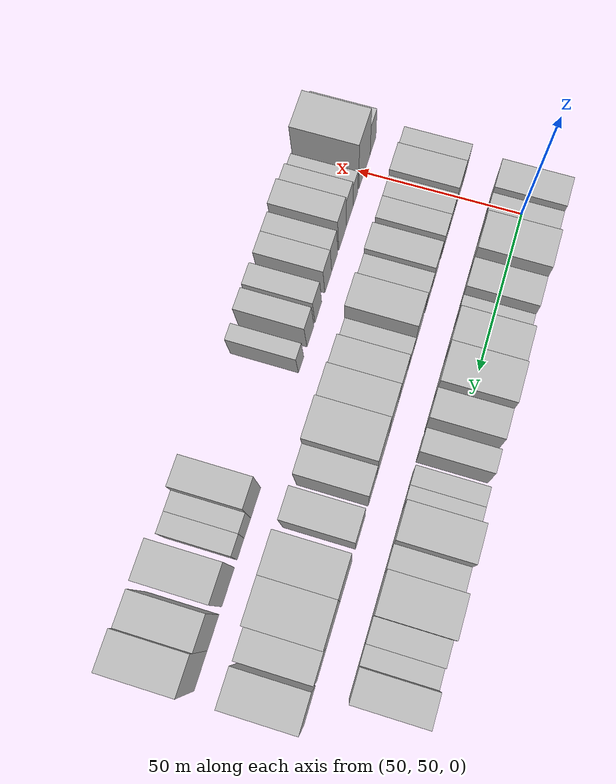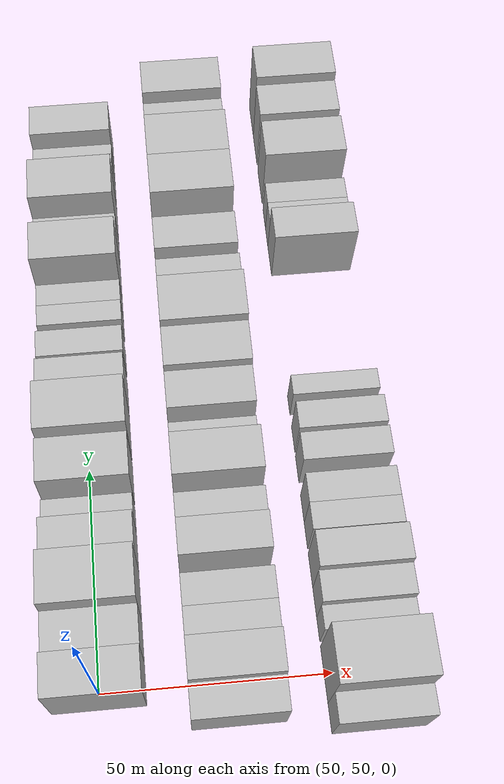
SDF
<sdf version="1.6">
 <world name="default">
  <model name="building_42">
   <static>1</static>
   <pose>50.0000 51.1295 0 0.000000 0.000000 0.000000</pose>
   <link name="link">
    <pose>0 0 10.50 0 0 0</pose>
    <collision name="collision"><geometry><box><size>20.0000 8.8744 21.0000</size></box></geometry></collision>
    <visual name="visual">
     <cast_shadows>0</cast_shadows>
     <geometry><box><size>20.0000 8.8744 21.0000</size></box></geometry>
     <material>
      <script>
       <uri>model://HANNAS_wall/materials/scripts</uri>
       <uri>model://HANNAS_wall/materials/textures</uri>
       <name>vrc/HANNAS_wall</name>
      </script>
     </material>
    </visual>
   </link>
  </model>
  <model name="building_43">
   <static>1</static>
   <pose>50.0000 59.9366 0 0.000000 0.000000 0.000000</pose>
   <link name="link">
    <pose>0 0 9.00 0 0 0</pose>
    <collision name="collision"><geometry><box><size>20.0000 8.7396 18.0000</size></box></geometry></collision>
    <visual name="visual">
     <cast_shadows>0</cast_shadows>
     <geometry><box><size>20.0000 8.7396 18.0000</size></box></geometry>
     <material>
      <script>
       <uri>model://HANNAS_wall/materials/scripts</uri>
       <uri>model://HANNAS_wall/materials/textures</uri>
       <name>vrc/HANNAS_wall</name>
      </script>
     </material>
    </visual>
   </link>
  </model>
  <model name="building_44">
   <static>1</static>
   <pose>50.0000 69.8404 0 0.000000 0.000000 0.000000</pose>
   <link name="link">
    <pose>0 0 12.00 0 0 0</pose>
    <collision name="collision"><geometry><box><size>20.0000 11.0680 24.0000</size></box></geometry></collision>
    <visual name="visual">
     <cast_shadows>0</cast_shadows>
     <geometry><box><size>20.0000 11.0680 24.0000</size></box></geometry>
     <material>
      <script>
       <uri>model://HANNAS_wall/materials/scripts</uri>
       <uri>model://HANNAS_wall/materials/textures</uri>
       <name>vrc/HANNAS_wall</name>
      </script>
     </material>
    </visual>
   </link>
  </model>
  <model name="building_45">
   <static>1</static>
   <pose>50.0000 79.7272 0 0.000000 0.000000 0.000000</pose>
   <link name="link">
    <pose>0 0 9.00 0 0 0</pose>
    <collision name="collision"><geometry><box><size>20.0000 8.7056 18.0000</size></box></geometry></collision>
    <visual name="visual">
     <cast_shadows>0</cast_shadows>
     <geometry><box><size>20.0000 8.7056 18.0000</size></box></geometry>
     <material>
      <script>
       <uri>model://HANNAS_wall/materials/scripts</uri>
       <uri>model://HANNAS_wall/materials/textures</uri>
       <name>vrc/HANNAS_wall</name>
      </script>
     </material>
    </visual>
   </link>
  </model>
  <model name="building_46">
   <static>1</static>
   <pose>50.0000 87.0113 0 0.000000 0.000000 0.000000</pose>
   <link name="link">
    <pose>0 0 6.00 0 0 0</pose>
    <collision name="collision"><geometry><box><size>20.0000 5.8626 12.0000</size></box></geometry></collision>
    <visual name="visual">
     <cast_shadows>0</cast_shadows>
     <geometry><box><size>20.0000 5.8626 12.0000</size></box></geometry>
     <material>
      <script>
       <uri>model://HANNAS_wall/materials/scripts</uri>
       <uri>model://HANNAS_wall/materials/textures</uri>
       <name>vrc/HANNAS_wall</name>
      </script>
     </material>
    </visual>
   </link>
  </model>
  <model name="building_47">
   <static>1</static>
   <pose>50.0000 95.8644 0 0.000000 0.000000 0.000000</pose>
   <link name="link">
    <pose>0 0 10.50 0 0 0</pose>
    <collision name="collision"><geometry><box><size>20.0000 9.8436 21.0000</size></box></geometry></collision>
    <visual name="visual">
     <cast_shadows>0</cast_shadows>
     <geometry><box><size>20.0000 9.8436 21.0000</size></box></geometry>
     <material>
      <script>
       <uri>model://HANNAS_wall/materials/scripts</uri>
       <uri>model://HANNAS_wall/materials/textures</uri>
       <name>vrc/HANNAS_wall</name>
      </script>
     </material>
    </visual>
   </link>
  </model>
  <model name="building_48">
   <static>1</static>
   <pose>50.0000 107.3642 0 0.000000 0.000000 0.000000</pose>
   <link name="link">
    <pose>0 0 12.00 0 0 0</pose>
    <collision name="collision"><geometry><box><size>20.0000 11.1561 24.0000</size></box></geometry></collision>
    <visual name="visual">
     <cast_shadows>0</cast_shadows>
     <geometry><box><size>20.0000 11.1561 24.0000</size></box></geometry>
     <material>
      <script>
       <uri>model://HANNAS_wall/materials/scripts</uri>
       <uri>model://HANNAS_wall/materials/textures</uri>
       <name>vrc/HANNAS_wall</name>
      </script>
     </material>
    </visual>
   </link>
  </model>
  <model name="building_49">
   <static>1</static>
   <pose>50.0000 117.0951 0 0.000000 0.000000 0.000000</pose>
   <link name="link">
    <pose>0 0 9.00 0 0 0</pose>
    <collision name="collision"><geometry><box><size>20.0000 8.3057 18.0000</size></box></geometry></collision>
    <visual name="visual">
     <cast_shadows>0</cast_shadows>
     <geometry><box><size>20.0000 8.3057 18.0000</size></box></geometry>
     <material>
      <script>
       <uri>model://HANNAS_wall/materials/scripts</uri>
       <uri>model://HANNAS_wall/materials/textures</uri>
       <name>vrc/HANNAS_wall</name>
      </script>
     </material>
    </visual>
   </link>
  </model>
  <model name="building_50">
   <static>1</static>
   <pose>50.0000 126.5278 0 0.000000 0.000000 0.000000</pose>
   <link name="link">
    <pose>0 0 7.50 0 0 0</pose>
    <collision name="collision"><geometry><box><size>20.0000 6.5597 15.0000</size></box></geometry></collision>
    <visual name="visual">
     <cast_shadows>0</cast_shadows>
     <geometry><box><size>20.0000 6.5597 15.0000</size></box></geometry>
     <material>
      <script>
       <uri>model://HANNAS_wall/materials/scripts</uri>
       <uri>model://HANNAS_wall/materials/textures</uri>
       <name>vrc/HANNAS_wall</name>
      </script>
     </material>
    </visual>
   </link>
  </model>
  <model name="building_51">
   <static>1</static>
   <pose>50.0000 135.4834 0 0.000000 0.000000 0.000000</pose>
   <link name="link">
    <pose>0 0 6.00 0 0 0</pose>
    <collision name="collision"><geometry><box><size>20.0000 5.3515 12.0000</size></box></geometry></collision>
    <visual name="visual">
     <cast_shadows>0</cast_shadows>
     <geometry><box><size>20.0000 5.3515 12.0000</size></box></geometry>
     <material>
      <script>
       <uri>model://HANNAS_wall/materials/scripts</uri>
       <uri>model://HANNAS_wall/materials/textures</uri>
       <name>vrc/HANNAS_wall</name>
      </script>
     </material>
    </visual>
   </link>
  </model>
  <model name="building_52">
   <static>1</static>
   <pose>50.0000 140.9551 0 0.000000 0.000000 0.000000</pose>
   <link name="link">
    <pose>0 0 6.00 0 0 0</pose>
    <collision name="collision"><geometry><box><size>20.0000 5.5919 12.0000</size></box></geometry></collision>
    <visual name="visual">
     <cast_shadows>0</cast_shadows>
     <geometry><box><size>20.0000 5.5919 12.0000</size></box></geometry>
     <material>
      <script>
       <uri>model://HANNAS_wall/materials/scripts</uri>
       <uri>model://HANNAS_wall/materials/textures</uri>
       <name>vrc/HANNAS_wall</name>
      </script>
     </material>
    </visual>
   </link>
  </model>
  <model name="building_53">
   <static>1</static>
   <pose>50.0000 148.7981 0 0.000000 0.000000 0.000000</pose>
   <link name="link">
    <pose>0 0 12.00 0 0 0</pose>
    <collision name="collision"><geometry><box><size>20.0000 10.0943 24.0000</size></box></geometry></collision>
    <visual name="visual">
     <cast_shadows>0</cast_shadows>
     <geometry><box><size>20.0000 10.0943 24.0000</size></box></geometry>
     <material>
      <script>
       <uri>model://HANNAS_wall/materials/scripts</uri>
       <uri>model://HANNAS_wall/materials/textures</uri>
       <name>vrc/HANNAS_wall</name>
      </script>
     </material>
    </visual>
   </link>
  </model>
  <model name="building_54">
   <static>1</static>
   <pose>50.0000 157.2991 0 0.000000 0.000000 0.000000</pose>
   <link name="link">
    <pose>0 0 7.50 0 0 0</pose>
    <collision name="collision"><geometry><box><size>20.0000 6.9077 15.0000</size></box></geometry></collision>
    <visual name="visual">
     <cast_shadows>0</cast_shadows>
     <geometry><box><size>20.0000 6.9077 15.0000</size></box></geometry>
     <material>
      <script>
       <uri>model://HANNAS_wall/materials/scripts</uri>
       <uri>model://HANNAS_wall/materials/textures</uri>
       <name>vrc/HANNAS_wall</name>
      </script>
     </material>
    </visual>
   </link>
  </model>
  <model name="building_55">
   <static>1</static>
   <pose>50.0000 166.2611 0 0.000000 0.000000 0.000000</pose>
   <link name="link">
    <pose>0 0 12.00 0 0 0</pose>
    <collision name="collision"><geometry><box><size>20.0000 11.0164 24.0000</size></box></geometry></collision>
    <visual name="visual">
     <cast_shadows>0</cast_shadows>
     <geometry><box><size>20.0000 11.0164 24.0000</size></box></geometry>
     <material>
      <script>
       <uri>model://HANNAS_wall/materials/scripts</uri>
       <uri>model://HANNAS_wall/materials/textures</uri>
       <name>vrc/HANNAS_wall</name>
      </script>
     </material>
    </visual>
   </link>
  </model>
  <model name="building_56">
   <static>1</static>
   <pose>50.0000 175.1466 0 0.000000 0.000000 0.000000</pose>
   <link name="link">
    <pose>0 0 7.50 0 0 0</pose>
    <collision name="collision"><geometry><box><size>20.0000 6.7548 15.0000</size></box></geometry></collision>
    <visual name="visual">
     <cast_shadows>0</cast_shadows>
     <geometry><box><size>20.0000 6.7548 15.0000</size></box></geometry>
     <material>
      <script>
       <uri>model://HANNAS_wall/materials/scripts</uri>
       <uri>model://HANNAS_wall/materials/textures</uri>
       <name>vrc/HANNAS_wall</name>
      </script>
     </material>
    </visual>
   </link>
  </model>
  <model name="building_57">
   <static>1</static>
   <pose>50.0000 181.1910 0 0.000000 0.000000 0.000000</pose>
   <link name="link">
    <pose>0 0 6.00 0 0 0</pose>
    <collision name="collision"><geometry><box><size>20.0000 5.3339 12.0000</size></box></geometry></collision>
    <visual name="visual">
     <cast_shadows>0</cast_shadows>
     <geometry><box><size>20.0000 5.3339 12.0000</size></box></geometry>
     <material>
      <script>
       <uri>model://HANNAS_wall/materials/scripts</uri>
       <uri>model://HANNAS_wall/materials/textures</uri>
       <name>vrc/HANNAS_wall</name>
      </script>
     </material>
    </visual>
   </link>
  </model>
  <model name="building_58">
   <static>1</static>
   <pose>50.0000 188.2223 0 0.000000 0.000000 0.000000</pose>
   <link name="link">
    <pose>0 0 9.00 0 0 0</pose>
    <collision name="collision"><geometry><box><size>20.0000 8.7287 18.0000</size></box></geometry></collision>
    <visual name="visual">
     <cast_shadows>0</cast_shadows>
     <geometry><box><size>20.0000 8.7287 18.0000</size></box></geometry>
     <material>
      <script>
       <uri>model://HANNAS_wall/materials/scripts</uri>
       <uri>model://HANNAS_wall/materials/textures</uri>
       <name>vrc/HANNAS_wall</name>
      </script>
     </material>
    </visual>
   </link>
  </model>
  <model name="building_120">
   <static>1</static>
   <pose>79.0000 44.6051 0 0.000000 0.000000 0.000000</pose>
   <link name="link">
    <pose>0 0 7.50 0 0 0</pose>
    <collision name="collision"><geometry><box><size>20.0000 7.1976 15.0000</size></box></geometry></collision>
    <visual name="visual">
     <cast_shadows>0</cast_shadows>
     <geometry><box><size>20.0000 7.1976 15.0000</size></box></geometry>
     <material>
      <script>
       <uri>model://HANNAS_wall/materials/scripts</uri>
       <uri>model://HANNAS_wall/materials/textures</uri>
       <name>vrc/HANNAS_wall</name>
      </script>
     </material>
    </visual>
   </link>
  </model>
  <model name="building_121">
   <static>1</static>
   <pose>79.0000 52.5953 0 0.000000 0.000000 0.000000</pose>
   <link name="link">
    <pose>0 0 9.00 0 0 0</pose>
    <collision name="collision"><geometry><box><size>20.0000 8.7830 18.0000</size></box></geometry></collision>
    <visual name="visual">
     <cast_shadows>0</cast_shadows>
     <geometry><box><size>20.0000 8.7830 18.0000</size></box></geometry>
     <material>
      <script>
       <uri>model://HANNAS_wall/materials/scripts</uri>
       <uri>model://HANNAS_wall/materials/textures</uri>
       <name>vrc/HANNAS_wall</name>
      </script>
     </material>
    </visual>
   </link>
  </model>
  <model name="building_122">
   <static>1</static>
   <pose>79.0000 60.2500 0 0.000000 0.000000 0.000000</pose>
   <link name="link">
    <pose>0 0 7.50 0 0 0</pose>
    <collision name="collision"><geometry><box><size>20.0000 6.5264 15.0000</size></box></geometry></collision>
    <visual name="visual">
     <cast_shadows>0</cast_shadows>
     <geometry><box><size>20.0000 6.5264 15.0000</size></box></geometry>
     <material>
      <script>
       <uri>model://HANNAS_wall/materials/scripts</uri>
       <uri>model://HANNAS_wall/materials/textures</uri>
       <name>vrc/HANNAS_wall</name>
      </script>
     </material>
    </visual>
   </link>
  </model>
  <model name="building_123">
   <static>1</static>
   <pose>79.0000 66.9723 0 0.000000 0.000000 0.000000</pose>
   <link name="link">
    <pose>0 0 7.50 0 0 0</pose>
    <collision name="collision"><geometry><box><size>20.0000 6.9181 15.0000</size></box></geometry></collision>
    <visual name="visual">
     <cast_shadows>0</cast_shadows>
     <geometry><box><size>20.0000 6.9181 15.0000</size></box></geometry>
     <material>
      <script>
       <uri>model://HANNAS_wall/materials/scripts</uri>
       <uri>model://HANNAS_wall/materials/textures</uri>
       <name>vrc/HANNAS_wall</name>
      </script>
     </material>
    </visual>
   </link>
  </model>
  <model name="building_124">
   <static>1</static>
   <pose>79.0000 77.4950 0 0.000000 0.000000 0.000000</pose>
   <link name="link">
    <pose>0 0 9.00 0 0 0</pose>
    <collision name="collision"><geometry><box><size>20.0000 8.1275 18.0000</size></box></geometry></collision>
    <visual name="visual">
     <cast_shadows>0</cast_shadows>
     <geometry><box><size>20.0000 8.1275 18.0000</size></box></geometry>
     <material>
      <script>
       <uri>model://HANNAS_wall/materials/scripts</uri>
       <uri>model://HANNAS_wall/materials/textures</uri>
       <name>vrc/HANNAS_wall</name>
      </script>
     </material>
    </visual>
   </link>
  </model>
  <model name="building_125">
   <static>1</static>
   <pose>79.0000 84.8039 0 0.000000 0.000000 0.000000</pose>
   <link name="link">
    <pose>0 0 7.50 0 0 0</pose>
    <collision name="collision"><geometry><box><size>20.0000 6.4903 15.0000</size></box></geometry></collision>
    <visual name="visual">
     <cast_shadows>0</cast_shadows>
     <geometry><box><size>20.0000 6.4903 15.0000</size></box></geometry>
     <material>
      <script>
       <uri>model://HANNAS_wall/materials/scripts</uri>
       <uri>model://HANNAS_wall/materials/textures</uri>
       <name>vrc/HANNAS_wall</name>
      </script>
     </material>
    </visual>
   </link>
  </model>
  <model name="building_126">
   <static>1</static>
   <pose>79.0000 94.8826 0 0.000000 0.000000 0.000000</pose>
   <link name="link">
    <pose>0 0 10.50 0 0 0</pose>
    <collision name="collision"><geometry><box><size>20.0000 9.6670 21.0000</size></box></geometry></collision>
    <visual name="visual">
     <cast_shadows>0</cast_shadows>
     <geometry><box><size>20.0000 9.6670 21.0000</size></box></geometry>
     <material>
      <script>
       <uri>model://HANNAS_wall/materials/scripts</uri>
       <uri>model://HANNAS_wall/materials/textures</uri>
       <name>vrc/HANNAS_wall</name>
      </script>
     </material>
    </visual>
   </link>
  </model>
  <model name="building_127">
   <static>1</static>
   <pose>79.0000 102.6740 0 0.000000 0.000000 0.000000</pose>
   <link name="link">
    <pose>0 0 6.00 0 0 0</pose>
    <collision name="collision"><geometry><box><size>20.0000 5.9159 12.0000</size></box></geometry></collision>
    <visual name="visual">
     <cast_shadows>0</cast_shadows>
     <geometry><box><size>20.0000 5.9159 12.0000</size></box></geometry>
     <material>
      <script>
       <uri>model://HANNAS_wall/materials/scripts</uri>
       <uri>model://HANNAS_wall/materials/textures</uri>
       <name>vrc/HANNAS_wall</name>
      </script>
     </material>
    </visual>
   </link>
  </model>
  <model name="building_128">
   <static>1</static>
   <pose>79.0000 111.1067 0 0.000000 0.000000 0.000000</pose>
   <link name="link">
    <pose>0 0 9.00 0 0 0</pose>
    <collision name="collision"><geometry><box><size>20.0000 8.9495 18.0000</size></box></geometry></collision>
    <visual name="visual">
     <cast_shadows>0</cast_shadows>
     <geometry><box><size>20.0000 8.9495 18.0000</size></box></geometry>
     <material>
      <script>
       <uri>model://HANNAS_wall/materials/scripts</uri>
       <uri>model://HANNAS_wall/materials/textures</uri>
       <name>vrc/HANNAS_wall</name>
      </script>
     </material>
    </visual>
   </link>
  </model>
  <model name="building_129">
   <static>1</static>
   <pose>79.0000 120.4599 0 0.000000 0.000000 0.000000</pose>
   <link name="link">
    <pose>0 0 10.50 0 0 0</pose>
    <collision name="collision"><geometry><box><size>20.0000 9.7569 21.0000</size></box></geometry></collision>
    <visual name="visual">
     <cast_shadows>0</cast_shadows>
     <geometry><box><size>20.0000 9.7569 21.0000</size></box></geometry>
     <material>
      <script>
       <uri>model://HANNAS_wall/materials/scripts</uri>
       <uri>model://HANNAS_wall/materials/textures</uri>
       <name>vrc/HANNAS_wall</name>
      </script>
     </material>
    </visual>
   </link>
  </model>
  <model name="building_130">
   <static>1</static>
   <pose>79.0000 131.1184 0 0.000000 0.000000 0.000000</pose>
   <link name="link">
    <pose>0 0 12.00 0 0 0</pose>
    <collision name="collision"><geometry><box><size>20.0000 11.5601 24.0000</size></box></geometry></collision>
    <visual name="visual">
     <cast_shadows>0</cast_shadows>
     <geometry><box><size>20.0000 11.5601 24.0000</size></box></geometry>
     <material>
      <script>
       <uri>model://HANNAS_wall/materials/scripts</uri>
       <uri>model://HANNAS_wall/materials/textures</uri>
       <name>vrc/HANNAS_wall</name>
      </script>
     </material>
    </visual>
   </link>
  </model>
  <model name="building_131">
   <static>1</static>
   <pose>79.0000 140.8996 0 0.000000 0.000000 0.000000</pose>
   <link name="link">
    <pose>0 0 9.00 0 0 0</pose>
    <collision name="collision"><geometry><box><size>20.0000 8.0022 18.0000</size></box></geometry></collision>
    <visual name="visual">
     <cast_shadows>0</cast_shadows>
     <geometry><box><size>20.0000 8.0022 18.0000</size></box></geometry>
     <material>
      <script>
       <uri>model://HANNAS_wall/materials/scripts</uri>
       <uri>model://HANNAS_wall/materials/textures</uri>
       <name>vrc/HANNAS_wall</name>
      </script>
     </material>
    </visual>
   </link>
  </model>
  <model name="building_132">
   <static>1</static>
   <pose>79.0000 152.3208 0 0.000000 0.000000 0.000000</pose>
   <link name="link">
    <pose>0 0 9.00 0 0 0</pose>
    <collision name="collision"><geometry><box><size>20.0000 8.8401 18.0000</size></box></geometry></collision>
    <visual name="visual">
     <cast_shadows>0</cast_shadows>
     <geometry><box><size>20.0000 8.8401 18.0000</size></box></geometry>
     <material>
      <script>
       <uri>model://HANNAS_wall/materials/scripts</uri>
       <uri>model://HANNAS_wall/materials/textures</uri>
       <name>vrc/HANNAS_wall</name>
      </script>
     </material>
    </visual>
   </link>
  </model>
  <model name="building_133">
   <static>1</static>
   <pose>79.0000 165.2848 0 0.000000 0.000000 0.000000</pose>
   <link name="link">
    <pose>0 0 12.00 0 0 0</pose>
    <collision name="collision"><geometry><box><size>20.0000 11.0878 24.0000</size></box></geometry></collision>
    <visual name="visual">
     <cast_shadows>0</cast_shadows>
     <geometry><box><size>20.0000 11.0878 24.0000</size></box></geometry>
     <material>
      <script>
       <uri>model://HANNAS_wall/materials/scripts</uri>
       <uri>model://HANNAS_wall/materials/textures</uri>
       <name>vrc/HANNAS_wall</name>
      </script>
     </material>
    </visual>
   </link>
  </model>
  <model name="building_134">
   <static>1</static>
   <pose>79.0000 176.8236 0 0.000000 0.000000 0.000000</pose>
   <link name="link">
    <pose>0 0 12.00 0 0 0</pose>
    <collision name="collision"><geometry><box><size>20.0000 11.9897 24.0000</size></box></geometry></collision>
    <visual name="visual">
     <cast_shadows>0</cast_shadows>
     <geometry><box><size>20.0000 11.9897 24.0000</size></box></geometry>
     <material>
      <script>
       <uri>model://HANNAS_wall/materials/scripts</uri>
       <uri>model://HANNAS_wall/materials/textures</uri>
       <name>vrc/HANNAS_wall</name>
      </script>
     </material>
    </visual>
   </link>
  </model>
  <model name="building_135">
   <static>1</static>
   <pose>79.0000 186.9787 0 0.000000 0.000000 0.000000</pose>
   <link name="link">
    <pose>0 0 9.00 0 0 0</pose>
    <collision name="collision"><geometry><box><size>20.0000 8.3206 18.0000</size></box></geometry></collision>
    <visual name="visual">
     <cast_shadows>0</cast_shadows>
     <geometry><box><size>20.0000 8.3206 18.0000</size></box></geometry>
     <material>
      <script>
       <uri>model://HANNAS_wall/materials/scripts</uri>
       <uri>model://HANNAS_wall/materials/textures</uri>
       <name>vrc/HANNAS_wall</name>
      </script>
     </material>
    </visual>
   </link>
  </model>
  <model name="building_136">
   <static>1</static>
   <pose>79.0000 197.1295 0 0.000000 0.000000 0.000000</pose>
   <link name="link">
    <pose>0 0 10.50 0 0 0</pose>
    <collision name="collision"><geometry><box><size>20.0000 9.9810 21.0000</size></box></geometry></collision>
    <visual name="visual">
     <cast_shadows>0</cast_shadows>
     <geometry><box><size>20.0000 9.9810 21.0000</size></box></geometry>
     <material>
      <script>
       <uri>model://HANNAS_wall/materials/scripts</uri>
       <uri>model://HANNAS_wall/materials/textures</uri>
       <name>vrc/HANNAS_wall</name>
      </script>
     </material>
    </visual>
   </link>
  </model>
  <model name="building_194">
   <static>1</static>
   <pose>108.0000 40.7879 0 0.000000 0.000000 0.000000</pose>
   <link name="link">
    <pose>0 0 7.50 0 0 0</pose>
    <collision name="collision"><geometry><box><size>20.0000 6.1422 15.0000</size></box></geometry></collision>
    <visual name="visual">
     <cast_shadows>0</cast_shadows>
     <geometry><box><size>20.0000 6.1422 15.0000</size></box></geometry>
     <material>
      <script>
       <uri>model://HANNAS_wall/materials/scripts</uri>
       <uri>model://HANNAS_wall/materials/textures</uri>
       <name>vrc/HANNAS_wall</name>
      </script>
     </material>
    </visual>
   </link>
  </model>
  <model name="building_195">
   <static>1</static>
   <pose>108.0000 49.7895 0 0.000000 0.000000 0.000000</pose>
   <link name="link">
    <pose>0 0 12.00 0 0 0</pose>
    <collision name="collision"><geometry><box><size>20.0000 11.8610 24.0000</size></box></geometry></collision>
    <visual name="visual">
     <cast_shadows>0</cast_shadows>
     <geometry><box><size>20.0000 11.8610 24.0000</size></box></geometry>
     <material>
      <script>
       <uri>model://HANNAS_wall/materials/scripts</uri>
       <uri>model://HANNAS_wall/materials/textures</uri>
       <name>vrc/HANNAS_wall</name>
      </script>
     </material>
    </visual>
   </link>
  </model>
  <model name="building_196">
   <static>1</static>
   <pose>108.0000 59.2820 0 0.000000 0.000000 0.000000</pose>
   <link name="link">
    <pose>0 0 6.00 0 0 0</pose>
    <collision name="collision"><geometry><box><size>20.0000 5.1239 12.0000</size></box></geometry></collision>
    <visual name="visual">
     <cast_shadows>0</cast_shadows>
     <geometry><box><size>20.0000 5.1239 12.0000</size></box></geometry>
     <material>
      <script>
       <uri>model://HANNAS_wall/materials/scripts</uri>
       <uri>model://HANNAS_wall/materials/textures</uri>
       <name>vrc/HANNAS_wall</name>
      </script>
     </material>
    </visual>
   </link>
  </model>
  <model name="building_197">
   <static>1</static>
   <pose>108.0000 65.1525 0 0.000000 0.000000 0.000000</pose>
   <link name="link">
    <pose>0 0 7.50 0 0 0</pose>
    <collision name="collision"><geometry><box><size>20.0000 6.6170 15.0000</size></box></geometry></collision>
    <visual name="visual">
     <cast_shadows>0</cast_shadows>
     <geometry><box><size>20.0000 6.6170 15.0000</size></box></geometry>
     <material>
      <script>
       <uri>model://HANNAS_wall/materials/scripts</uri>
       <uri>model://HANNAS_wall/materials/textures</uri>
       <name>vrc/HANNAS_wall</name>
      </script>
     </material>
    </visual>
   </link>
  </model>
  <model name="building_198">
   <static>1</static>
   <pose>108.0000 72.3671 0 0.000000 0.000000 0.000000</pose>
   <link name="link">
    <pose>0 0 9.00 0 0 0</pose>
    <collision name="collision"><geometry><box><size>20.0000 7.8123 18.0000</size></box></geometry></collision>
    <visual name="visual">
     <cast_shadows>0</cast_shadows>
     <geometry><box><size>20.0000 7.8123 18.0000</size></box></geometry>
     <material>
      <script>
       <uri>model://HANNAS_wall/materials/scripts</uri>
       <uri>model://HANNAS_wall/materials/textures</uri>
       <name>vrc/HANNAS_wall</name>
      </script>
     </material>
    </visual>
   </link>
  </model>
  <model name="building_199">
   <static>1</static>
   <pose>108.0000 80.2965 0 0.000000 0.000000 0.000000</pose>
   <link name="link">
    <pose>0 0 7.50 0 0 0</pose>
    <collision name="collision"><geometry><box><size>20.0000 6.0464 15.0000</size></box></geometry></collision>
    <visual name="visual">
     <cast_shadows>0</cast_shadows>
     <geometry><box><size>20.0000 6.0464 15.0000</size></box></geometry>
     <material>
      <script>
       <uri>model://HANNAS_wall/materials/scripts</uri>
       <uri>model://HANNAS_wall/materials/textures</uri>
       <name>vrc/HANNAS_wall</name>
      </script>
     </material>
    </visual>
   </link>
  </model>
  <model name="building_200">
   <static>1</static>
   <pose>108.0000 86.6601 0 0.000000 0.000000 0.000000</pose>
   <link name="link">
    <pose>0 0 7.50 0 0 0</pose>
    <collision name="collision"><geometry><box><size>20.0000 6.6808 15.0000</size></box></geometry></collision>
    <visual name="visual">
     <cast_shadows>0</cast_shadows>
     <geometry><box><size>20.0000 6.6808 15.0000</size></box></geometry>
     <material>
      <script>
       <uri>model://HANNAS_wall/materials/scripts</uri>
       <uri>model://HANNAS_wall/materials/textures</uri>
       <name>vrc/HANNAS_wall</name>
      </script>
     </material>
    </visual>
   </link>
  </model>
  <model name="building_201">
   <static>1</static>
   <pose>108.0000 96.2511 0 0.000000 0.000000 0.000000</pose>
   <link name="link">
    <pose>0 0 7.50 0 0 0</pose>
    <collision name="collision"><geometry><box><size>20.0000 6.5013 15.0000</size></box></geometry></collision>
    <visual name="visual">
     <cast_shadows>0</cast_shadows>
     <geometry><box><size>20.0000 6.5013 15.0000</size></box></geometry>
     <material>
      <script>
       <uri>model://HANNAS_wall/materials/scripts</uri>
       <uri>model://HANNAS_wall/materials/textures</uri>
       <name>vrc/HANNAS_wall</name>
      </script>
     </material>
    </visual>
   </link>
  </model>
  <model name="building_202">
   <static>1</static>
   <pose>108.0000 103.7430 0 0.000000 0.000000 0.000000</pose>
   <link name="link">
    <pose>0 0 7.50 0 0 0</pose>
    <collision name="collision"><geometry><box><size>20.0000 6.4826 15.0000</size></box></geometry></collision>
    <visual name="visual">
     <cast_shadows>0</cast_shadows>
     <geometry><box><size>20.0000 6.4826 15.0000</size></box></geometry>
     <material>
      <script>
       <uri>model://HANNAS_wall/materials/scripts</uri>
       <uri>model://HANNAS_wall/materials/textures</uri>
       <name>vrc/HANNAS_wall</name>
      </script>
     </material>
    </visual>
   </link>
  </model>
  <model name="building_203">
   <static>1</static>
   <pose>108.0000 112.4257 0 0.000000 0.000000 0.000000</pose>
   <link name="link">
    <pose>0 0 6.00 0 0 0</pose>
    <collision name="collision"><geometry><box><size>20.0000 4.8827 12.0000</size></box></geometry></collision>
    <visual name="visual">
     <cast_shadows>0</cast_shadows>
     <geometry><box><size>20.0000 4.8827 12.0000</size></box></geometry>
     <material>
      <script>
       <uri>model://HANNAS_wall/materials/scripts</uri>
       <uri>model://HANNAS_wall/materials/textures</uri>
       <name>vrc/HANNAS_wall</name>
      </script>
     </material>
    </visual>
   </link>
  </model>
  <model name="building_204">
   <static>1</static>
   <pose>108.0000 152.6121 0 0.000000 0.000000 0.000000</pose>
   <link name="link">
    <pose>0 0 9.00 0 0 0</pose>
    <collision name="collision"><geometry><box><size>20.0000 8.4967 18.0000</size></box></geometry></collision>
    <visual name="visual">
     <cast_shadows>0</cast_shadows>
     <geometry><box><size>20.0000 8.4967 18.0000</size></box></geometry>
     <material>
      <script>
       <uri>model://HANNAS_wall/materials/scripts</uri>
       <uri>model://HANNAS_wall/materials/textures</uri>
       <name>vrc/HANNAS_wall</name>
      </script>
     </material>
    </visual>
   </link>
  </model>
  <model name="building_205">
   <static>1</static>
   <pose>108.0000 159.6238 0 0.000000 0.000000 0.000000</pose>
   <link name="link">
    <pose>0 0 6.00 0 0 0</pose>
    <collision name="collision"><geometry><box><size>20.0000 5.5266 12.0000</size></box></geometry></collision>
    <visual name="visual">
     <cast_shadows>0</cast_shadows>
     <geometry><box><size>20.0000 5.5266 12.0000</size></box></geometry>
     <material>
      <script>
       <uri>model://HANNAS_wall/materials/scripts</uri>
       <uri>model://HANNAS_wall/materials/textures</uri>
       <name>vrc/HANNAS_wall</name>
      </script>
     </material>
    </visual>
   </link>
  </model>
  <model name="building_206">
   <static>1</static>
   <pose>108.0000 165.3242 0 0.000000 0.000000 0.000000</pose>
   <link name="link">
    <pose>0 0 6.00 0 0 0</pose>
    <collision name="collision"><geometry><box><size>20.0000 5.8741 12.0000</size></box></geometry></collision>
    <visual name="visual">
     <cast_shadows>0</cast_shadows>
     <geometry><box><size>20.0000 5.8741 12.0000</size></box></geometry>
     <material>
      <script>
       <uri>model://HANNAS_wall/materials/scripts</uri>
       <uri>model://HANNAS_wall/materials/textures</uri>
       <name>vrc/HANNAS_wall</name>
      </script>
     </material>
    </visual>
   </link>
  </model>
  <model name="building_207">
   <static>1</static>
   <pose>108.0000 175.4608 0 0.000000 0.000000 0.000000</pose>
   <link name="link">
    <pose>0 0 10.50 0 0 0</pose>
    <collision name="collision"><geometry><box><size>20.0000 10.3992 21.0000</size></box></geometry></collision>
    <visual name="visual">
     <cast_shadows>0</cast_shadows>
     <geometry><box><size>20.0000 10.3992 21.0000</size></box></geometry>
     <material>
      <script>
       <uri>model://HANNAS_wall/materials/scripts</uri>
       <uri>model://HANNAS_wall/materials/textures</uri>
       <name>vrc/HANNAS_wall</name>
      </script>
     </material>
    </visual>
   </link>
  </model>
  <model name="building_208">
   <static>1</static>
   <pose>108.0000 187.3224 0 0.000000 0.000000 0.000000</pose>
   <link name="link">
    <pose>0 0 10.50 0 0 0</pose>
    <collision name="collision"><geometry><box><size>20.0000 9.3240 21.0000</size></box></geometry></collision>
    <visual name="visual">
     <cast_shadows>0</cast_shadows>
     <geometry><box><size>20.0000 9.3240 21.0000</size></box></geometry>
     <material>
      <script>
       <uri>model://HANNAS_wall/materials/scripts</uri>
       <uri>model://HANNAS_wall/materials/textures</uri>
       <name>vrc/HANNAS_wall</name>
      </script>
     </material>
    </visual>
   </link>
  </model>
  <model name="building_209">
   <static>1</static>
   <pose>108.0000 197.0554 0 0.000000 0.000000 0.000000</pose>
   <link name="link">
    <pose>0 0 12.00 0 0 0</pose>
    <collision name="collision"><geometry><box><size>20.0000 10.1421 24.0000</size></box></geometry></collision>
    <visual name="visual">
     <cast_shadows>0</cast_shadows>
     <geometry><box><size>20.0000 10.1421 24.0000</size></box></geometry>
     <material>
      <script>
       <uri>model://HANNAS_wall/materials/scripts</uri>
       <uri>model://HANNAS_wall/materials/textures</uri>
       <name>vrc/HANNAS_wall</name>
      </script>
     </material>
    </visual>
   </link>
  </model>
 </world>
</sdf>
